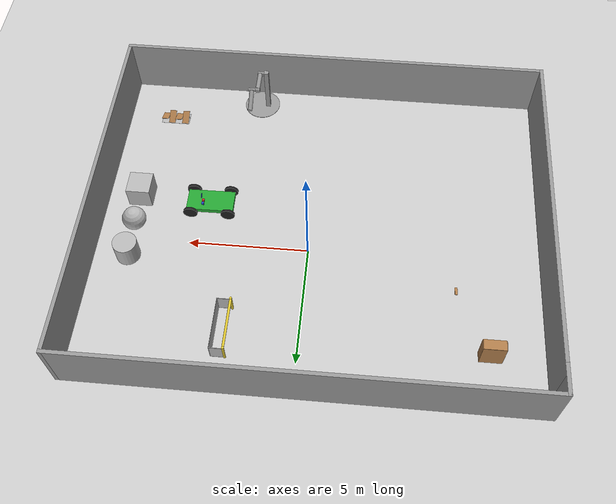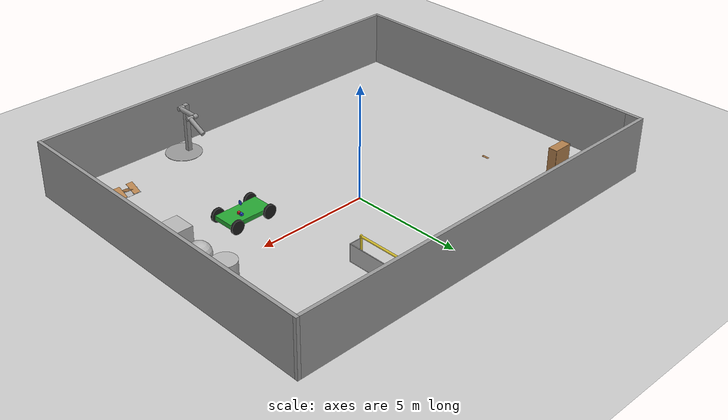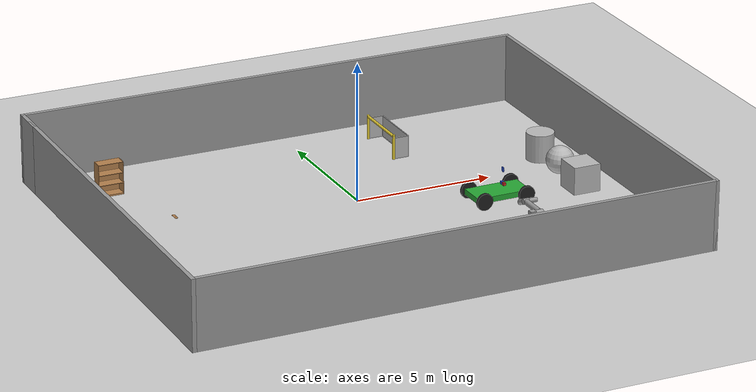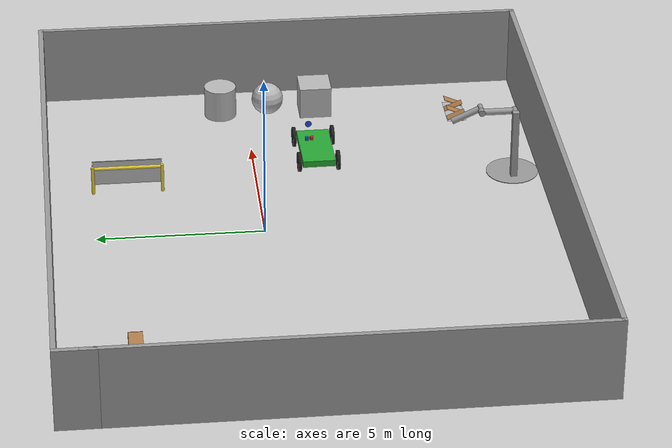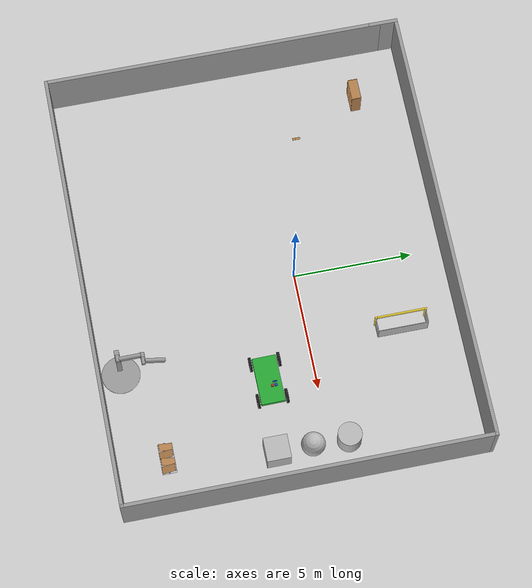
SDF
<sdf version="1.7">
 <world name="default">
  <light name="sun" type="directional">
   <pose>0 0 10 0 -0 0</pose>
   <diffuse>0.8 0.8 0.8 1</diffuse>
   <specular>0.2 0.2 0.2 1</specular>
   <attenuation>
    <range>1000</range>
    <constant>0.9</constant>
    <linear>0.01</linear>
    <quadratic>0.001</quadratic>
   </attenuation>
   <direction>-0.5 0.1 -0.9</direction>
   <spot><inner_angle>0</inner_angle><outer_angle>0</outer_angle><falloff>0</falloff></spot>
  </light>
  <model name="ground_plane">
   <static>1</static>
   <link name="link">
    <collision name="collision">
     <geometry><plane><normal>0 0 1</normal><size>100 100</size></plane></geometry>
     <surface><friction><ode><mu>100</mu><mu2>50</mu2></ode></friction></surface>
    </collision>
    <visual name="visual">
     <cast_shadows>0</cast_shadows>
     <geometry><plane><normal>0 0 1</normal><size>100 100</size></plane></geometry>
     <material>
      <script><uri>file://media/materials/scripts/gazebo.material</uri><name>Gazebo/Grey</name></script>
     </material>
    </visual>
   </link>
  </model>
  <gravity>0 0 -9.8</gravity>
  <magnetic_field>6e-06 2.3e-05 -4.2e-05</magnetic_field>
  <atmosphere type="adiabatic"/>
  <physics type="ode">
   <max_step_size>0.001</max_step_size>
   <real_time_factor>1</real_time_factor>
   <real_time_update_rate>1000</real_time_update_rate>
  </physics>
  <scene><ambient>0.4 0.4 0.4 1</ambient><background>0.7 0.7 0.7 1</background><shadows>1</shadows></scene>
  <audio><device>default</device></audio>
  <spherical_coordinates>
   <surface_model>EARTH_WGS84</surface_model>
   <latitude_deg>0</latitude_deg>
   <longitude_deg>0</longitude_deg>
   <elevation>0</elevation>
   <heading_deg>0</heading_deg>
  </spherical_coordinates>
  <model name="mws">
   <pose>-0.377163 -1.18877 0 0 -0 0</pose>
   <link name="Wall_4">
    <collision name="Wall_4_Collision">
     <geometry><box><size>14.5 0.15 2.5</size></box></geometry>
     <pose>0 0 1.25 0 -0 0</pose>
    </collision>
    <visual name="Wall_4_Visual">
     <pose>0 0 1.25 0 -0 0</pose>
     <geometry><box><size>14.5 0.15 2.5</size></box></geometry>
     <material>
      <script><uri>file://media/materials/scripts/gazebo.material</uri><name>Gazebo/Grey</name></script>
      <ambient>1 1 1 1</ambient>
     </material>
     <meta><layer>0</layer></meta>
    </visual>
    <pose>-9.3 -0.375 0 0 -0 -1.5708</pose>
   </link>
   <link name="Wall_5">
    <collision name="Wall_5_Collision">
     <geometry><box><size>18.75 0.15 2.5</size></box></geometry>
     <pose>0 0 1.25 0 -0 0</pose>
    </collision>
    <visual name="Wall_5_Visual">
     <pose>0 0 1.25 0 -0 0</pose>
     <geometry><box><size>18.75 0.15 2.5</size></box></geometry>
     <material>
      <script><uri>file://media/materials/scripts/gazebo.material</uri><name>Gazebo/Grey</name></script>
      <ambient>1 1 1 1</ambient>
     </material>
     <meta><layer>0</layer></meta>
    </visual>
    <pose>-0 -7.55 0 0 -0 0</pose>
   </link>
   <link name="Wall_6">
    <collision name="Wall_6_Collision">
     <geometry><box><size>15.25 0.15 2.5</size></box></geometry>
     <pose>0 0 1.25 0 -0 0</pose>
    </collision>
    <visual name="Wall_6_Visual">
     <pose>0 0 1.25 0 -0 0</pose>
     <geometry><box><size>15.25 0.15 2.5</size></box></geometry>
     <material>
      <script><uri>file://media/materials/scripts/gazebo.material</uri><name>Gazebo/Grey</name></script>
      <ambient>1 1 1 1</ambient>
     </material>
     <meta><layer>0</layer></meta>
    </visual>
    <pose>9.3 0 0 0 -0 1.5708</pose>
   </link>
   <link name="Wall_7">
    <collision name="Wall_7_Collision">
     <geometry><box><size>18.75 0.15 2.5</size></box></geometry>
     <pose>0 0 1.25 0 -0 0</pose>
    </collision>
    <visual name="Wall_7_Visual">
     <pose>0 0 1.25 0 -0 0</pose>
     <geometry><box><size>18.75 0.15 2.5</size></box></geometry>
     <material>
      <script><uri>file://media/materials/scripts/gazebo.material</uri><name>Gazebo/Grey</name></script>
      <ambient>1 1 1 1</ambient>
     </material>
     <meta><layer>0</layer></meta>
    </visual>
    <pose>-0 7.55 0 0 -0 3.14159</pose>
   </link>
   <link name="Wall_8">
    <collision name="Wall_8_Collision">
     <geometry><box><size>1.25 0.15 2.5</size></box></geometry>
     <pose>0 0 1.25 0 -0 0</pose>
    </collision>
    <visual name="Wall_8_Visual">
     <pose>0 0 1.25 0 -0 0</pose>
     <geometry><box><size>1.25 0.15 2.5</size></box></geometry>
     <material>
      <script><uri>file://media/materials/scripts/gazebo.material</uri><name>Gazebo/Grey</name></script>
      <ambient>1 1 1 1</ambient>
     </material>
     <meta><layer>0</layer></meta>
    </visual>
    <pose>-9.3 7 0 0 -0 -1.5708</pose>
   </link>
   <static>1</static>
  </model>
  <model name="bookshelf">
   <static>1</static>
   <link name="link">
    <inertial><mass>1</mass></inertial>
    <collision name="back">
     <pose>0 0.005 0.6 0 -0 0</pose>
     <geometry><box><size>0.9 0.01 1.2</size></box></geometry>
    </collision>
    <visual name="visual1">
     <pose>0 0.005 0.6 0 -0 0</pose>
     <geometry><box><size>0.9 0.01 1.2</size></box></geometry>
     <material>
      <script><uri>file://media/materials/scripts/gazebo.material</uri><name>Gazebo/Wood</name></script>
     </material>
    </visual>
    <collision name="left_side">
     <pose>0.45 -0.195 0.6 0 -0 0</pose>
     <geometry><box><size>0.02 0.4 1.2</size></box></geometry>
    </collision>
    <visual name="visual2">
     <pose>0.45 -0.195 0.6 0 -0 0</pose>
     <geometry><box><size>0.02 0.4 1.2</size></box></geometry>
     <material>
      <script><uri>file://media/materials/scripts/gazebo.material</uri><name>Gazebo/Wood</name></script>
     </material>
    </visual>
    <collision name="right_side">
     <pose>-0.45 -0.195 0.6 0 -0 0</pose>
     <geometry><box><size>0.02 0.4 1.2</size></box></geometry>
    </collision>
    <visual name="visual3">
     <pose>-0.45 -0.195 0.6 0 -0 0</pose>
     <geometry><box><size>0.02 0.4 1.2</size></box></geometry>
     <material>
      <script><uri>file://media/materials/scripts/gazebo.material</uri><name>Gazebo/Wood</name></script>
     </material>
    </visual>
    <collision name="bottom">
     <pose>0 -0.195 0.03 0 -0 0</pose>
     <geometry><box><size>0.88 0.4 0.06</size></box></geometry>
    </collision>
    <visual name="visual4">
     <pose>0 -0.195 0.03 0 -0 0</pose>
     <geometry><box><size>0.88 0.4 0.06</size></box></geometry>
     <material>
      <script><uri>file://media/materials/scripts/gazebo.material</uri><name>Gazebo/Wood</name></script>
     </material>
    </visual>
    <collision name="top">
     <pose>0 -0.195 1.19 0 -0 0</pose>
     <geometry><box><size>0.88 0.4 0.02</size></box></geometry>
    </collision>
    <visual name="visual5">
     <pose>0 -0.195 1.19 0 -0 0</pose>
     <geometry><box><size>0.88 0.4 0.02</size></box></geometry>
     <material>
      <script><uri>file://media/materials/scripts/gazebo.material</uri><name>Gazebo/Wood</name></script>
     </material>
    </visual>
    <collision name="low_shelf">
     <pose>0 -0.195 0.43 0 -0 0</pose>
     <geometry><box><size>0.88 0.4 0.02</size></box></geometry>
    </collision>
    <visual name="visual6">
     <pose>0 -0.195 0.43 0 -0 0</pose>
     <geometry><box><size>0.88 0.4 0.02</size></box></geometry>
     <material>
      <script><uri>file://media/materials/scripts/gazebo.material</uri><name>Gazebo/Wood</name></script>
     </material>
    </visual>
    <collision name="high_shelf">
     <pose>0 -0.195 0.8 0 -0 0</pose>
     <geometry><box><size>0.88 0.4 0.02</size></box></geometry>
    </collision>
    <visual name="visual7">
     <pose>0 -0.195 0.8 0 -0 0</pose>
     <geometry><box><size>0.88 0.4 0.02</size></box></geometry>
     <material>
      <script><uri>file://media/materials/scripts/gazebo.material</uri><name>Gazebo/Wood</name></script>
     </material>
    </visual>
   </link>
   <pose>-7.43604 4.33046 0 0 -0 0</pose>
  </model>
  <model name="frc2016_chevaldefrise">
   <link name="base">
    <inertial>
     <mass>10</mass>
     <pose>0 0 0.15672 0 -0 0</pose>
     <inertia><ixx>0.380221</ixx><ixy>0</ixy><ixz>0</ixz><iyy>1.43365</iyy><iyz>0</iyz><izz>1.64745</izz></inertia>
    </inertial>
    <visual name="platform">
     <pose>0 0 0.06968 0 -0 0</pose>
     <geometry><box><size>1.27 0.5969 0.003175</size></box></geometry>
    </visual>
    <collision name="platform">
     <pose>0 0 0.06968 0 -0 0</pose>
     <geometry><box><size>1.27 0.5969 0.003175</size></box></geometry>
    </collision>
    <visual name="bar">
     <pose>0 0 0.16855 0 1.5707 0</pose>
     <geometry><cylinder><radius>0.02108</radius><length>1.273</length></cylinder></geometry>
    </visual>
    <collision name="bar">
     <pose>0 0 0.16855 0 1.5707 0</pose>
     <geometry><cylinder><radius>0.02108</radius><length>1.27</length></cylinder></geometry>
    </collision>
    <visual name="castor1">
     <pose>-0.45653 -0.16581 0.03175 0 -0 0</pose>
     <geometry><sphere><radius>0.03175</radius></sphere></geometry>
    </visual>
    <collision name="castor1">
     <pose>-0.45653 -0.16581 0.03175 0 -0 0</pose>
     <geometry><sphere><radius>0.03175</radius></sphere></geometry>
    </collision>
    <visual name="castor2">
     <pose>-0.27855 0.21408 0.03175 0 -0 0</pose>
     <geometry><sphere><radius>0.03175</radius></sphere></geometry>
    </visual>
    <collision name="castor2">
     <pose>-0.27855 0.21408 0.03175 0 -0 0</pose>
     <geometry><sphere><radius>0.03175</radius></sphere></geometry>
    </collision>
    <visual name="castor3">
     <pose>0.28191 0.21419 0.03175 0 -0 0</pose>
     <geometry><sphere><radius>0.03175</radius></sphere></geometry>
    </visual>
    <collision name="castor3">
     <pose>0.28191 0.21419 0.03175 0 -0 0</pose>
     <geometry><sphere><radius>0.03175</radius></sphere></geometry>
    </collision>
    <visual name="castor4">
     <pose>0.45965 -0.16602 0.03175 0 -0 0</pose>
     <geometry><sphere><radius>0.03175</radius></sphere></geometry>
    </visual>
    <collision name="castor4">
     <pose>0.45965 -0.16602 0.03175 0 -0 0</pose>
     <geometry><sphere><radius>0.03175</radius></sphere></geometry>
    </collision>
   </link>
   <link name="slant1">
    <pose>-0.4572 0.01307 0.1997 -0.39732 0 0</pose>
    <inertial>
     <pose>0 0.1 0 0 -0 0</pose>
     <mass>2</mass>
     <inertia>
      <ixx>0.0606857</ixx>
      <ixy>0</ixy>
      <ixz>0</ixz>
      <iyy>0.0148723</iyy>
      <iyz>0</iyz>
      <izz>0.0755042</izz>
     </inertia>
    </inertial>
    <visual name="visual">
     <geometry><box><size>0.29845 0.593285 0.0127</size></box></geometry>
     <material><script><name>Gazebo/WoodFloor</name><uri>__default__</uri></script></material>
    </visual>
    <collision name="collision"><geometry><box><size>0.29845 0.593285 0.0127</size></box></geometry></collision>
   </link>
   <link name="slant2">
    <pose>-0.1524 -0.01307 0.1997 0.39732 -0 0</pose>
    <inertial>
     <mass>2</mass>
     <pose>0 -0.1 0 0 -0 0</pose>
     <inertia>
      <ixx>0.0606857</ixx>
      <ixy>0</ixy>
      <ixz>0</ixz>
      <iyy>0.0148723</iyy>
      <iyz>0</iyz>
      <izz>0.0755042</izz>
     </inertia>
    </inertial>
    <visual name="visual">
     <geometry><box><size>0.29845 0.593285 0.0127</size></box></geometry>
     <material><script><name>Gazebo/WoodFloor</name><uri>__default__</uri></script></material>
    </visual>
    <collision name="collision"><geometry><box><size>0.29845 0.593285 0.0127</size></box></geometry></collision>
   </link>
   <link name="slant3">
    <pose>0.1524 0.01307 0.1997 -0.39732 0 0</pose>
    <inertial>
     <pose>0 0.1 0 0 -0 0</pose>
     <mass>2</mass>
     <inertia>
      <ixx>0.0606857</ixx>
      <ixy>0</ixy>
      <ixz>0</ixz>
      <iyy>0.0148723</iyy>
      <iyz>0</iyz>
      <izz>0.0755042</izz>
     </inertia>
    </inertial>
    <visual name="visual">
     <geometry><box><size>0.29845 0.593285 0.0127</size></box></geometry>
     <material><script><name>Gazebo/WoodFloor</name><uri>__default__</uri></script></material>
    </visual>
    <collision name="collision"><geometry><box><size>0.29845 0.593285 0.0127</size></box></geometry></collision>
   </link>
   <link name="slant4">
    <pose>0.4572 -0.01307 0.1997 0.39732 -0 0</pose>
    <inertial>
     <pose>0 -0.1 0 0 -0 0</pose>
     <mass>2</mass>
     <inertia>
      <ixx>0.0606857</ixx>
      <ixy>0</ixy>
      <ixz>0</ixz>
      <iyy>0.0148723</iyy>
      <iyz>0</iyz>
      <izz>0.0755042</izz>
     </inertia>
    </inertial>
    <visual name="visual">
     <geometry><box><size>0.29845 0.593285 0.0127</size></box></geometry>
     <material><script><name>Gazebo/WoodFloor</name><uri>__default__</uri></script></material>
    </visual>
    <collision name="collision"><geometry><box><size>0.29845 0.593285 0.0127</size></box></geometry></collision>
   </link>
   <joint name="slant1_joint" type="revolute">
    <parent>base</parent>
    <child>slant1</child>
    <axis>
     <xyz>1 0 0</xyz>
     <limit><lower>0</lower><upper>1.5707</upper></limit>
     <dynamics><spring_reference>0</spring_reference><spring_stiffness>0</spring_stiffness></dynamics>
    </axis>
   </joint>
   <joint name="slant2_joint" type="revolute">
    <parent>base</parent>
    <child>slant2</child>
    <axis>
     <xyz>1 0 0</xyz>
     <limit><lower>-1.5707</lower><upper>0</upper></limit>
     <dynamics><spring_reference>0</spring_reference><spring_stiffness>0</spring_stiffness></dynamics>
    </axis>
   </joint>
   <joint name="slant3_joint" type="revolute">
    <parent>base</parent>
    <child>slant3</child>
    <axis>
     <xyz>1 0 0</xyz>
     <limit><lower>0</lower><upper>1.5707</upper></limit>
     <dynamics><spring_reference>0</spring_reference><spring_stiffness>0</spring_stiffness></dynamics>
    </axis>
   </joint>
   <joint name="slant4_joint" type="revolute">
    <parent>base</parent>
    <child>slant4</child>
    <axis>
     <xyz>1 0 0</xyz>
     <limit><lower>-1.5707</lower><upper>0</upper></limit>
     <dynamics><spring_reference>0</spring_reference><spring_stiffness>0</spring_stiffness></dynamics>
    </axis>
   </joint>
   <pose>6.7494 -6.62676 0.01 0 -0 0</pose>
  </model>
  <model name="wooden_board">
   <link name="base">
    <pose>0 0 0.00523 0 -0 0</pose>
    <inertial>
     <mass>0.2765</mass>
     <inertia>
      <ixx>0.0025148</ixx>
      <ixy>0</ixy>
      <ixz>0</ixz>
      <iyy>0.00024037</iyy>
      <iyz>0</iyz>
      <izz>0.00275013</izz>
     </inertia>
    </inertial>
    <collision name="collision">
     <geometry><box><size>0.1016 0.3302 0.01046</size></box></geometry>
     <surface>
      <contact>
       <poissons_ratio>0.347</poissons_ratio>
       <elastic_modulus>8.8e+09</elastic_modulus>
       <ode><kp>100000</kp><kd>100</kd><max_vel>100</max_vel><min_depth>0.001</min_depth></ode>
      </contact>
      <friction>
       <torsional>
        <coefficient>1</coefficient>
        <use_patch_radius>0</use_patch_radius>
        <surface_radius>0.01</surface_radius>
       </torsional>
      </friction>
     </surface>
    </collision>
    <visual name="visual">
     <geometry><box><size>0.1016 0.3302 0.01046</size></box></geometry>
     <material>
      <script><uri>file://media/materials/scripts/gazebo.material</uri><name>Gazebo/Wood</name></script>
     </material>
    </visual>
    <visual name="tee_nut_1">
     <pose>0 -0.116 0 0 -0 0</pose>
     <geometry><cylinder><radius>0.00635</radius><length>0.0105646</length></cylinder></geometry>
     <material>
      <script><uri>file://media/materials/scripts/gazebo.material</uri><name>Gazebo/Grey</name></script>
     </material>
    </visual>
    <visual name="tee_nut_2">
     <pose>0 -0.038 0 0 -0 0</pose>
     <geometry><cylinder><radius>0.00635</radius><length>0.0105646</length></cylinder></geometry>
     <material>
      <script><uri>file://media/materials/scripts/gazebo.material</uri><name>Gazebo/Grey</name></script>
     </material>
    </visual>
    <visual name="tee_nut_3">
     <pose>0 0.038 0 0 -0 0</pose>
     <geometry><cylinder><radius>0.00635</radius><length>0.0105646</length></cylinder></geometry>
     <material>
      <script><uri>file://media/materials/scripts/gazebo.material</uri><name>Gazebo/Grey</name></script>
     </material>
    </visual>
    <visual name="tee_nut_4">
     <pose>0 0.116 0 0 -0 0</pose>
     <geometry><cylinder><radius>0.00635</radius><length>0.0105646</length></cylinder></geometry>
     <material>
      <script><uri>file://media/materials/scripts/gazebo.material</uri><name>Gazebo/Grey</name></script>
     </material>
    </visual>
   </link>
   <pose>-6.16116 1.35188 0.008993 0 -0 0</pose>
  </model>
  <model name="car">
   <link name="chassis">
    <pose>0 0 0.3 0 -0 0</pose>
    <collision name="collision"><geometry><box><size>2 1 0.2</size></box></geometry></collision>
    <visual name="visual">
     <geometry><box><size>2 1 0.2</size></box></geometry>
     <material>
      <script><uri>file://media/materials/scripts/gazebo.material</uri><name>Gazebo/Green</name></script>
     </material>
    </visual>
    <inertial>
     <inertia><ixx>1</ixx><ixy>0</ixy><ixz>0</ixz><iyy>1</iyy><iyz>0</iyz><izz>1</izz></inertia>
     <mass>1</mass>
    </inertial>
   </link>
   <link name="front_left_wheel">
    <pose>0.8 0.6 0.3 -0 1.5707 1.5707</pose>
    <collision name="collision">
     <geometry><cylinder><radius>0.3</radius><length>0.1</length></cylinder></geometry>
    </collision>
    <visual name="visual">
     <geometry><cylinder><radius>0.3</radius><length>0.1</length></cylinder></geometry>
     <material>
      <script><uri>file://media/materials/scripts/gazebo.material</uri><name>Gazebo/Black</name></script>
     </material>
    </visual>
    <inertial>
     <inertia><ixx>1</ixx><ixy>0</ixy><ixz>0</ixz><iyy>1</iyy><iyz>0</iyz><izz>1</izz></inertia>
     <mass>1</mass>
    </inertial>
   </link>
   <link name="front_right_wheel">
    <pose>0.8 -0.6 0.3 -0 1.5707 1.5707</pose>
    <collision name="collision">
     <geometry><cylinder><radius>0.3</radius><length>0.1</length></cylinder></geometry>
    </collision>
    <visual name="visual">
     <geometry><cylinder><radius>0.3</radius><length>0.1</length></cylinder></geometry>
     <material>
      <script><uri>file://media/materials/scripts/gazebo.material</uri><name>Gazebo/Black</name></script>
     </material>
    </visual>
    <inertial>
     <inertia><ixx>1</ixx><ixy>0</ixy><ixz>0</ixz><iyy>1</iyy><iyz>0</iyz><izz>1</izz></inertia>
     <mass>1</mass>
    </inertial>
   </link>
   <link name="back_right_wheel">
    <pose>-0.8 -0.6 0.3 -0 1.5707 1.5707</pose>
    <collision name="collision">
     <geometry><cylinder><radius>0.3</radius><length>0.1</length></cylinder></geometry>
    </collision>
    <visual name="visual">
     <geometry><cylinder><radius>0.3</radius><length>0.1</length></cylinder></geometry>
     <material>
      <script><uri>file://media/materials/scripts/gazebo.material</uri><name>Gazebo/Black</name></script>
     </material>
    </visual>
    <inertial>
     <inertia><ixx>1</ixx><ixy>0</ixy><ixz>0</ixz><iyy>1</iyy><iyz>0</iyz><izz>1</izz></inertia>
     <mass>1</mass>
    </inertial>
   </link>
   <link name="back_left_wheel">
    <pose>-0.8 0.6 0.3 -0 1.5707 1.5707</pose>
    <collision name="collision">
     <geometry><cylinder><radius>0.3</radius><length>0.1</length></cylinder></geometry>
    </collision>
    <visual name="visual">
     <geometry><cylinder><radius>0.3</radius><length>0.1</length></cylinder></geometry>
     <material>
      <script><uri>file://media/materials/scripts/gazebo.material</uri><name>Gazebo/Black</name></script>
     </material>
    </visual>
    <inertial>
     <inertia><ixx>1</ixx><ixy>0</ixy><ixz>0</ixz><iyy>1</iyy><iyz>0</iyz><izz>1</izz></inertia>
     <mass>1</mass>
    </inertial>
   </link>
   <link name="gas_pedal">
    <pose>0.3 0.1 0.5 0 -0 0</pose>
    <collision name="collision"><geometry><box><size>0.1 0.1 0.1</size></box></geometry></collision>
    <visual name="visual">
     <geometry><box><size>0.1 0.1 0.1</size></box></geometry>
     <material>
      <script><uri>file://media/materials/scripts/gazebo.material</uri><name>Gazebo/Red</name></script>
     </material>
    </visual>
    <inertial>
     <inertia><ixx>1</ixx><ixy>0</ixy><ixz>0</ixz><iyy>1</iyy><iyz>0</iyz><izz>1</izz></inertia>
     <mass>1</mass>
    </inertial>
   </link>
   <link name="brake_pedal">
    <pose>0.3 0.25 0.5 0 -0 0</pose>
    <collision name="collision"><geometry><box><size>0.1 0.1 0.1</size></box></geometry></collision>
    <visual name="visual">
     <geometry><box><size>0.1 0.1 0.1</size></box></geometry>
     <material>
      <script><uri>file://media/materials/scripts/gazebo.material</uri><name>Gazebo/Blue</name></script>
     </material>
    </visual>
    <inertial>
     <inertia><ixx>1</ixx><ixy>0</ixy><ixz>0</ixz><iyy>1</iyy><iyz>0</iyz><izz>1</izz></inertia>
     <mass>1</mass>
    </inertial>
   </link>
   <link name="steering_wheel">
    <pose>0.3 0.2 1 0 1.5707 0</pose>
    <collision name="collision">
     <geometry><cylinder><radius>0.1</radius><length>0.01</length></cylinder></geometry>
    </collision>
    <visual name="visual">
     <geometry><cylinder><radius>0.1</radius><length>0.01</length></cylinder></geometry>
     <material>
      <script><uri>file://media/materials/scripts/gazebo.material</uri><name>Gazebo/Blue</name></script>
     </material>
    </visual>
    <inertial>
     <inertia><ixx>1</ixx><ixy>0</ixy><ixz>0</ixz><iyy>1</iyy><iyz>0</iyz><izz>1</izz></inertia>
     <mass>1</mass>
    </inertial>
   </link>
   <joint name="gas_joint" type="prismatic">
    <parent>chassis</parent>
    <child>gas_pedal</child>
    <axis>
     <xyz expressed_in="__model__">1 0 0</xyz>
     <limit><lower>0</lower><upper>0.2</upper></limit>
     <dynamics><spring_reference>0</spring_reference><spring_stiffness>0</spring_stiffness></dynamics>
    </axis>
   </joint>
   <joint name="brake_joint" type="prismatic">
    <parent>chassis</parent>
    <child>brake_pedal</child>
    <axis>
     <xyz expressed_in="__model__">1 0 0</xyz>
     <limit><lower>0</lower><upper>0.2</upper></limit>
     <dynamics><spring_reference>0</spring_reference><spring_stiffness>0</spring_stiffness></dynamics>
    </axis>
   </joint>
   <joint name="steering_joint" type="revolute">
    <parent>chassis</parent>
    <child>steering_wheel</child>
    <axis>
     <xyz expressed_in="__model__">1 0 0</xyz>
     <limit><lower>-7.853</lower><upper>7.853</upper></limit>
     <dynamics><spring_reference>0</spring_reference><spring_stiffness>0</spring_stiffness></dynamics>
    </axis>
   </joint>
   <joint name="front_left_joint" type="revolute2">
    <parent>chassis</parent>
    <child>front_left_wheel</child>
    <axis>
     <xyz expressed_in="__model__">0 0 1</xyz>
     <limit><lower>2.69961e-07</lower><upper>2.69961e-07</upper></limit>
     <dynamics><spring_reference>0</spring_reference><spring_stiffness>0</spring_stiffness></dynamics>
    </axis>
    <axis2>
     <xyz expressed_in="__model__">0 1 0</xyz>
     <limit><upper>1e+16</upper><lower>-1e+16</lower></limit>
     <dynamics><spring_reference>0</spring_reference><spring_stiffness>0</spring_stiffness></dynamics>
    </axis2>
    <physics><ode><limit><cfm>0</cfm><erp>0.9</erp></limit></ode></physics>
   </joint>
   <joint name="front_right_joint" type="revolute2">
    <parent>chassis</parent>
    <child>front_right_wheel</child>
    <axis>
     <xyz expressed_in="__model__">0 0 1</xyz>
     <limit><lower>2.69961e-07</lower><upper>2.69961e-07</upper></limit>
     <dynamics><spring_reference>0</spring_reference><spring_stiffness>0</spring_stiffness></dynamics>
    </axis>
    <axis2>
     <xyz expressed_in="__model__">0 1 0</xyz>
     <limit><upper>1e+16</upper><lower>-1e+16</lower></limit>
     <dynamics><spring_reference>0</spring_reference><spring_stiffness>0</spring_stiffness></dynamics>
    </axis2>
    <physics><ode><limit><cfm>0</cfm><erp>0.9</erp></limit></ode></physics>
   </joint>
   <joint name="back_right_joint" type="revolute2">
    <parent>chassis</parent>
    <child>back_right_wheel</child>
    <axis>
     <xyz expressed_in="__model__">0 0 1</xyz>
     <limit><lower>0</lower><upper>0</upper></limit>
     <dynamics><spring_reference>0</spring_reference><spring_stiffness>0</spring_stiffness></dynamics>
    </axis>
    <axis2>
     <xyz expressed_in="__model__">0 1 0</xyz>
     <limit><upper>1e+16</upper><lower>-1e+16</lower></limit>
     <dynamics><spring_reference>0</spring_reference><spring_stiffness>0</spring_stiffness></dynamics>
    </axis2>
    <physics><ode><limit><cfm>0</cfm><erp>0.9</erp></limit></ode></physics>
   </joint>
   <joint name="back_left_joint" type="revolute2">
    <parent>chassis</parent>
    <child>back_left_wheel</child>
    <axis>
     <xyz expressed_in="__model__">0 0 1</xyz>
     <limit><lower>0</lower><upper>0</upper></limit>
     <dynamics><spring_reference>0</spring_reference><spring_stiffness>0</spring_stiffness></dynamics>
    </axis>
    <axis2>
     <xyz expressed_in="__model__">0 1 0</xyz>
     <limit><upper>1e+16</upper><lower>-1e+16</lower></limit>
     <dynamics><spring_reference>0</spring_reference><spring_stiffness>0</spring_stiffness></dynamics>
    </axis2>
    <physics><ode><limit><cfm>0</cfm><erp>0.9</erp></limit></ode></physics>
   </joint>
   <plugin name="vehicle" filename="libVehiclePlugin.so">
    <front_left>front_left_joint</front_left>
    <front_right>front_right_joint</front_right>
    <back_left>back_left_joint</back_left>
    <back_right>back_right_joint</back_right>
    <gas>gas_joint</gas>
    <brake>brake_joint</brake>
    <steering>steering_joint</steering>
    <front_power>10</front_power>
    <rear_power>10</rear_power>
    <tire_angle_range>0.5</tire_angle_range>
    <max_speed>10</max_speed>
    <aero_load>0.1</aero_load>
   </plugin>
   <pose>4.35145 -1.95366 0.010009 -1.1e-05 2e-06 0.010212</pose>
  </model>
  <model name="textured_shapes">
   <pose>7.40777 -0.71022 0.51 0 -0 0</pose>
   <link name="box">
    <pose>0 -1.5 0 0 -0 0</pose>
    <collision name="collision"><geometry><box><size>1 1 1</size></box></geometry></collision>
    <visual name="visual">
     <geometry><box><size>1 1 1</size></box></geometry>
     <material>
      <script>
       <uri>model://textured_shapes/materials/scripts</uri>
       <uri>model://textured_shapes/materials/textures</uri>
       <name>TexturedShape/Squares</name>
      </script>
     </material>
    </visual>
    <inertial>
     <inertia><ixx>1</ixx><ixy>0</ixy><ixz>0</ixz><iyy>1</iyy><iyz>0</iyz><izz>1</izz></inertia>
     <mass>1</mass>
    </inertial>
   </link>
   <link name="sphere">
    <collision name="collision"><geometry><sphere><radius>0.5</radius></sphere></geometry></collision>
    <visual name="visual">
     <geometry><sphere><radius>0.5</radius></sphere></geometry>
     <material>
      <script>
       <uri>model://textured_shapes/materials/scripts</uri>
       <uri>model://textured_shapes/materials/textures</uri>
       <name>TexturedShape/Squares</name>
      </script>
     </material>
    </visual>
    <inertial>
     <inertia><ixx>1</ixx><ixy>0</ixy><ixz>0</ixz><iyy>1</iyy><iyz>0</iyz><izz>1</izz></inertia>
     <mass>1</mass>
    </inertial>
   </link>
   <link name="cylinder">
    <pose>0 1.5 0 0 -0 0</pose>
    <collision name="collision">
     <geometry><cylinder><radius>0.5</radius><length>1</length></cylinder></geometry>
    </collision>
    <visual name="visual">
     <geometry><cylinder><radius>0.5</radius><length>1</length></cylinder></geometry>
     <material>
      <script>
       <uri>model://textured_shapes/materials/scripts</uri>
       <uri>model://textured_shapes/materials/textures</uri>
       <name>TexturedShape/Squares</name>
      </script>
     </material>
    </visual>
    <inertial>
     <inertia><ixx>1</ixx><ixy>0</ixy><ixz>0</ixz><iyy>1</iyy><iyz>0</iyz><izz>1</izz></inertia>
     <mass>1</mass>
    </inertial>
   </link>
  </model>
  <model name="robocup_3d_goal">
   <static>1</static>
   <link name="left_post">
    <pose>0 1.05 0.45 0 -0 0</pose>
    <collision name="collision">
     <geometry><cylinder><radius>0.05</radius><length>0.9</length></cylinder></geometry>
    </collision>
    <visual name="visual">
     <geometry><cylinder><radius>0.05</radius><length>0.9</length></cylinder></geometry>
     <material>
      <script><uri>file://media/materials/scripts/gazebo.material</uri><name>Gazebo/ZincYellow</name></script>
     </material>
    </visual>
   </link>
   <link name="left_support_horiz_lower">
    <pose>0.3 1.05 0.01 0 -0 0</pose>
    <collision name="collision"><geometry><box><size>0.5 0.02 0.02</size></box></geometry></collision>
    <visual name="visual">
     <geometry><box><size>0.5 0.02 0.02</size></box></geometry>
     <material>
      <script><uri>file://media/materials/scripts/gazebo.material</uri><name>Gazebo/White</name></script>
     </material>
    </visual>
   </link>
   <link name="left_support_horiz_upper">
    <pose>0.3 1.05 0.79 0 -0 0</pose>
    <collision name="collision"><geometry><box><size>0.5 0.02 0.02</size></box></geometry></collision>
    <visual name="visual">
     <geometry><box><size>0.5 0.02 0.02</size></box></geometry>
     <material>
      <script><uri>file://media/materials/scripts/gazebo.material</uri><name>Gazebo/White</name></script>
     </material>
    </visual>
   </link>
   <link name="left_support_vertical">
    <pose>0.56 1.05 0.4 3.14159 1.57079 3.14159</pose>
    <collision name="collision"><geometry><box><size>0.8 0.02 0.02</size></box></geometry></collision>
    <visual name="visual">
     <geometry><box><size>0.8 0.02 0.02</size></box></geometry>
     <material>
      <script><uri>file://media/materials/scripts/gazebo.material</uri><name>Gazebo/White</name></script>
     </material>
    </visual>
   </link>
   <link name="right_support_horiz_lower">
    <pose>0.3 -1.05 0.01 0 -0 0</pose>
    <collision name="collision"><geometry><box><size>0.5 0.02 0.02</size></box></geometry></collision>
    <visual name="visual">
     <geometry><box><size>0.5 0.02 0.02</size></box></geometry>
     <material>
      <script><uri>file://media/materials/scripts/gazebo.material</uri><name>Gazebo/White</name></script>
     </material>
    </visual>
   </link>
   <link name="right_support_horiz_upper">
    <pose>0.3 -1.05 0.79 0 -0 0</pose>
    <collision name="collision"><geometry><box><size>0.5 0.02 0.02</size></box></geometry></collision>
    <visual name="visual">
     <geometry><box><size>0.5 0.02 0.02</size></box></geometry>
     <material>
      <script><uri>file://media/materials/scripts/gazebo.material</uri><name>Gazebo/White</name></script>
     </material>
    </visual>
   </link>
   <link name="right_support_vertical">
    <pose>0.56 -1.05 0.4 3.14159 1.57079 3.14159</pose>
    <collision name="collision"><geometry><box><size>0.8 0.02 0.02</size></box></geometry></collision>
    <visual name="visual">
     <geometry><box><size>0.8 0.02 0.02</size></box></geometry>
     <material>
      <script><uri>file://media/materials/scripts/gazebo.material</uri><name>Gazebo/White</name></script>
     </material>
    </visual>
   </link>
   <link name="center_support_horiz_lower">
    <pose>0.56 0 0.01 3.14159 1.57079 3.14159</pose>
    <collision name="collision"><geometry><box><size>0.02 2.08 0.02</size></box></geometry></collision>
    <visual name="visual">
     <geometry><box><size>0.02 2.08 0.02</size></box></geometry>
     <material>
      <script><uri>file://media/materials/scripts/gazebo.material</uri><name>Gazebo/White</name></script>
     </material>
    </visual>
   </link>
   <link name="center_support_horiz_upper">
    <pose>0.56 0 0.79 3.14159 1.57079 3.14159</pose>
    <collision name="collision"><geometry><box><size>0.02 2.08 0.02</size></box></geometry></collision>
    <visual name="visual">
     <geometry><box><size>0.02 2.08 0.02</size></box></geometry>
     <material>
      <script><uri>file://media/materials/scripts/gazebo.material</uri><name>Gazebo/White</name></script>
     </material>
    </visual>
   </link>
   <link name="right_post">
    <pose>0 -1.05 0.45 0 -0 0</pose>
    <collision name="collision">
     <geometry><cylinder><radius>0.05</radius><length>0.9</length></cylinder></geometry>
    </collision>
    <visual name="visual">
     <geometry><cylinder><radius>0.05</radius><length>0.9</length></cylinder></geometry>
     <material>
      <script><uri>file://media/materials/scripts/gazebo.material</uri><name>Gazebo/ZincYellow</name></script>
     </material>
    </visual>
   </link>
   <link name="crossbar">
    <pose>0 0 0.85 1.57 1.57 0</pose>
    <collision name="collision">
     <geometry><cylinder><radius>0.05</radius><length>2</length></cylinder></geometry>
    </collision>
    <visual name="visual">
     <geometry><cylinder><radius>0.05</radius><length>2</length></cylinder></geometry>
     <material>
      <script><uri>file://media/materials/scripts/gazebo.material</uri><name>Gazebo/ZincYellow</name></script>
     </material>
    </visual>
   </link>
   <link name="center_net">
    <pose>0.56 0 0.4 0 -0 0</pose>
    <collision name="collision"><geometry><box><size>0.01 2.1 0.8</size></box></geometry></collision>
    <visual name="visual">
     <geometry><box><size>0.01 2.1 0.8</size></box></geometry>
     <material>
      <script>
       <uri>model://robocup09_spl_field/materials/scripts/</uri>
       <uri>model://robocup09_spl_field/materials/textures/</uri>
       <name>RoboCup/Net</name>
      </script>
     </material>
    </visual>
   </link>
   <link name="left_net">
    <pose>0.3 1.05 0.4 0 -0 0</pose>
    <collision name="collision"><geometry><box><size>0.5 0.01 0.76</size></box></geometry></collision>
    <visual name="visual">
     <geometry><box><size>0.5 0.01 0.76</size></box></geometry>
     <material>
      <script>
       <uri>model://robocup09_spl_field/materials/scripts/</uri>
       <uri>model://robocup09_spl_field/materials/textures/</uri>
       <name>RoboCup/Net</name>
      </script>
     </material>
    </visual>
   </link>
   <link name="right_net">
    <pose>0.3 -1.05 0.4 0 -0 0</pose>
    <collision name="collision"><geometry><box><size>0.5 0.01 0.76</size></box></geometry></collision>
    <visual name="visual">
     <geometry><box><size>0.5 0.01 0.76</size></box></geometry>
     <material>
      <script>
       <uri>model://robocup09_spl_field/materials/scripts/</uri>
       <uri>model://robocup09_spl_field/materials/textures/</uri>
       <name>RoboCup/Net</name>
      </script>
     </material>
    </visual>
   </link>
   <pose>2.74172 3.93421 0 0 -0 0</pose>
  </model>
  <model name="double_pendulum_with_base">
   <link name="base">
    <inertial>
     <mass>100</mass>
     <inertia><ixx>1</ixx><ixy>0</ixy><ixz>0</ixz><iyy>1</iyy><iyz>0</iyz><izz>1</izz></inertia>
    </inertial>
    <visual name="vis_plate_on_ground">
     <pose>0 0 0.01 0 -0 0</pose>
     <geometry><cylinder><radius>0.8</radius><length>0.02</length></cylinder></geometry>
     <material>
      <script><uri>file://media/materials/scripts/gazebo.material</uri><name>Gazebo/Grey</name></script>
     </material>
    </visual>
    <visual name="vis_pole">
     <pose>-0.275 0 1.1 0 -0 0</pose>
     <geometry><box><size>0.2 0.2 2.2</size></box></geometry>
     <material>
      <script><uri>file://media/materials/scripts/gazebo.material</uri><name>Gazebo/Grey</name></script>
     </material>
    </visual>
    <collision name="col_plate_on_ground">
     <pose>0 0 0.01 0 -0 0</pose>
     <geometry><cylinder><radius>0.8</radius><length>0.02</length></cylinder></geometry>
    </collision>
    <collision name="col_pole">
     <pose>-0.275 0 1.1 0 -0 0</pose>
     <geometry><box><size>0.2 0.2 2.2</size></box></geometry>
    </collision>
   </link>
   <link name="upper_link">
    <pose>0 0 2.1 -1.5708 0 0</pose>
    <inertial>
     <pose>0 0 0.5 0 -0 0</pose>
     <inertia><ixx>1</ixx><ixy>0</ixy><ixz>0</ixz><iyy>1</iyy><iyz>0</iyz><izz>1</izz></inertia>
     <mass>1</mass>
    </inertial>
    <visual name="vis_upper_joint">
     <pose>-0.05 0 0 3.14159 1.57079 3.14159</pose>
     <geometry><cylinder><radius>0.1</radius><length>0.3</length></cylinder></geometry>
     <material>
      <script><uri>file://media/materials/scripts/gazebo.material</uri><name>Gazebo/Grey</name></script>
     </material>
    </visual>
    <visual name="vis_lower_joint">
     <pose>0 0 1 3.14159 1.57079 3.14159</pose>
     <geometry><cylinder><radius>0.1</radius><length>0.2</length></cylinder></geometry>
     <material>
      <script><uri>file://media/materials/scripts/gazebo.material</uri><name>Gazebo/Grey</name></script>
     </material>
    </visual>
    <visual name="vis_cylinder">
     <pose>0 0 0.5 0 -0 0</pose>
     <geometry><cylinder><radius>0.1</radius><length>0.9</length></cylinder></geometry>
     <material>
      <script><uri>file://media/materials/scripts/gazebo.material</uri><name>Gazebo/Grey</name></script>
     </material>
    </visual>
    <collision name="col_upper_joint">
     <pose>-0.05 0 0 3.14159 1.57079 3.14159</pose>
     <geometry><cylinder><radius>0.1</radius><length>0.3</length></cylinder></geometry>
    </collision>
    <collision name="col_lower_joint">
     <pose>0 0 1 3.14159 1.57079 3.14159</pose>
     <geometry><cylinder><radius>0.1</radius><length>0.2</length></cylinder></geometry>
    </collision>
    <collision name="col_cylinder">
     <pose>0 0 0.5 0 -0 0</pose>
     <geometry><cylinder><radius>0.1</radius><length>0.9</length></cylinder></geometry>
    </collision>
   </link>
   <link name="lower_link">
    <pose>0.25 1 2.1 -2 0 0</pose>
    <inertial>
     <pose>0 0 0.5 0 -0 0</pose>
     <inertia><ixx>1</ixx><ixy>0</ixy><ixz>0</ixz><iyy>1</iyy><iyz>0</iyz><izz>1</izz></inertia>
     <mass>1</mass>
    </inertial>
    <visual name="vis_lower_joint">
     <pose>0 0 0 3.14159 1.57079 3.14159</pose>
     <geometry><cylinder><radius>0.08</radius><length>0.3</length></cylinder></geometry>
     <material>
      <script><uri>file://media/materials/scripts/gazebo.material</uri><name>Gazebo/Grey</name></script>
     </material>
    </visual>
    <visual name="vis_cylinder">
     <pose>0 0 0.5 0 -0 0</pose>
     <geometry><cylinder><radius>0.1</radius><length>0.9</length></cylinder></geometry>
     <material>
      <script><uri>file://media/materials/scripts/gazebo.material</uri><name>Gazebo/Grey</name></script>
     </material>
    </visual>
    <collision name="col_lower_joint">
     <pose>0 0 0 3.14159 1.57079 3.14159</pose>
     <geometry><cylinder><radius>0.08</radius><length>0.3</length></cylinder></geometry>
    </collision>
    <collision name="col_cylinder">
     <pose>0 0 0.5 0 -0 0</pose>
     <geometry><cylinder><radius>0.1</radius><length>0.9</length></cylinder></geometry>
    </collision>
   </link>
   <joint name="upper_joint" type="revolute">
    <parent>base</parent>
    <child>upper_link</child>
    <axis>
     <xyz>1 0 0</xyz>
     <limit><lower>-1e+16</lower><upper>1e+16</upper></limit>
     <dynamics><spring_reference>0</spring_reference><spring_stiffness>0</spring_stiffness></dynamics>
    </axis>
   </joint>
   <joint name="lower_joint" type="revolute">
    <parent>upper_link</parent>
    <child>lower_link</child>
    <axis>
     <xyz>1 0 0</xyz>
     <limit><lower>-1e+16</lower><upper>1e+16</upper></limit>
     <dynamics><spring_reference>0</spring_reference><spring_stiffness>0</spring_stiffness></dynamics>
    </axis>
   </joint>
   <pose>2.86207 -7.86318 0.01 0 -0 0.000252</pose>
  </model>
 </world>
</sdf>
